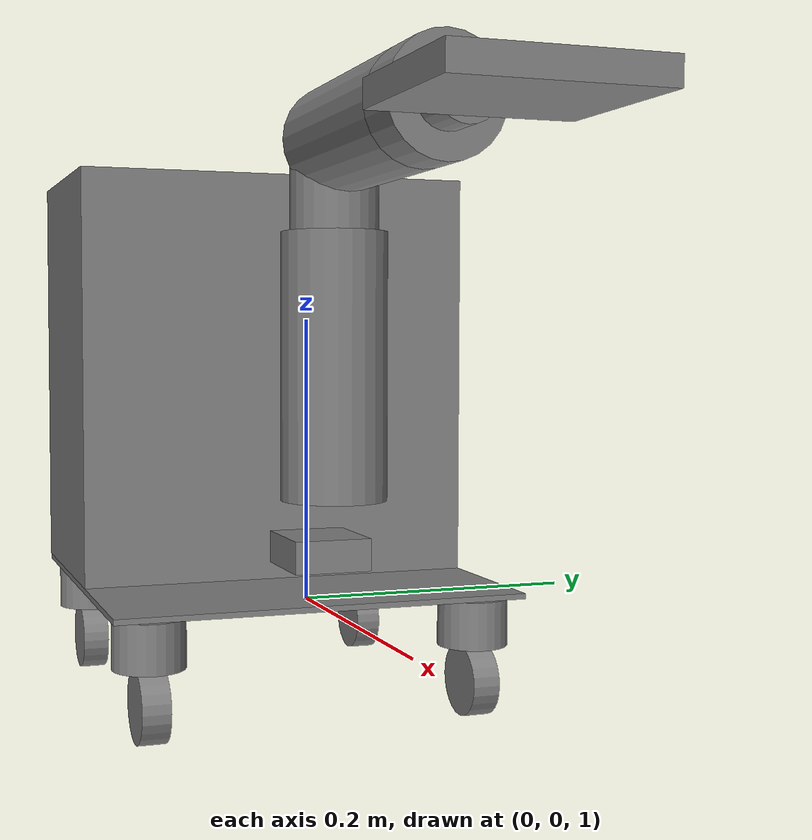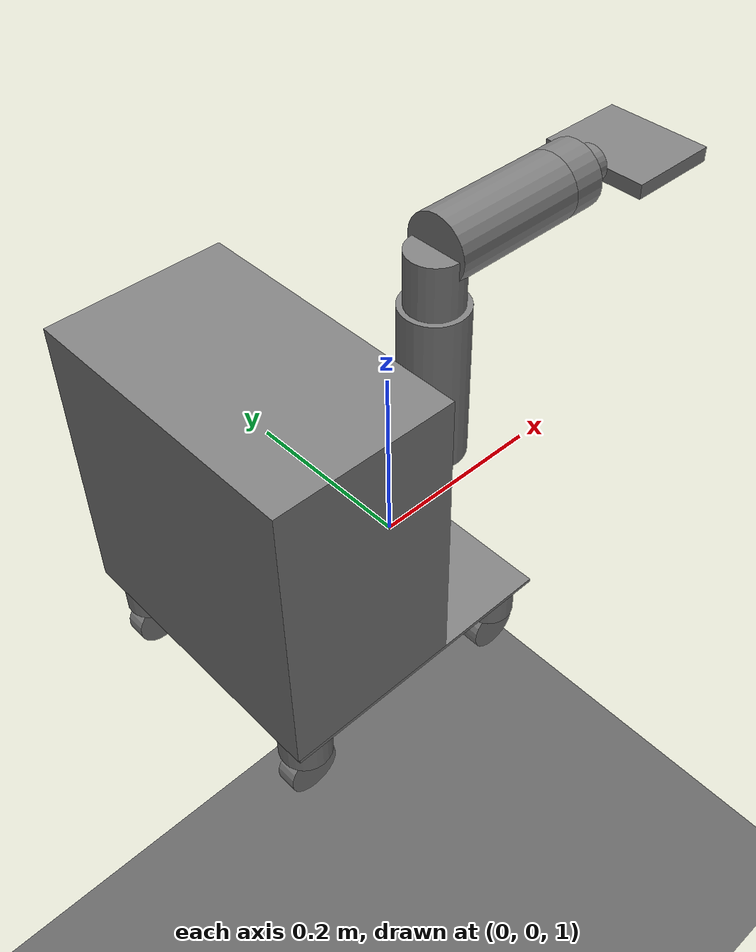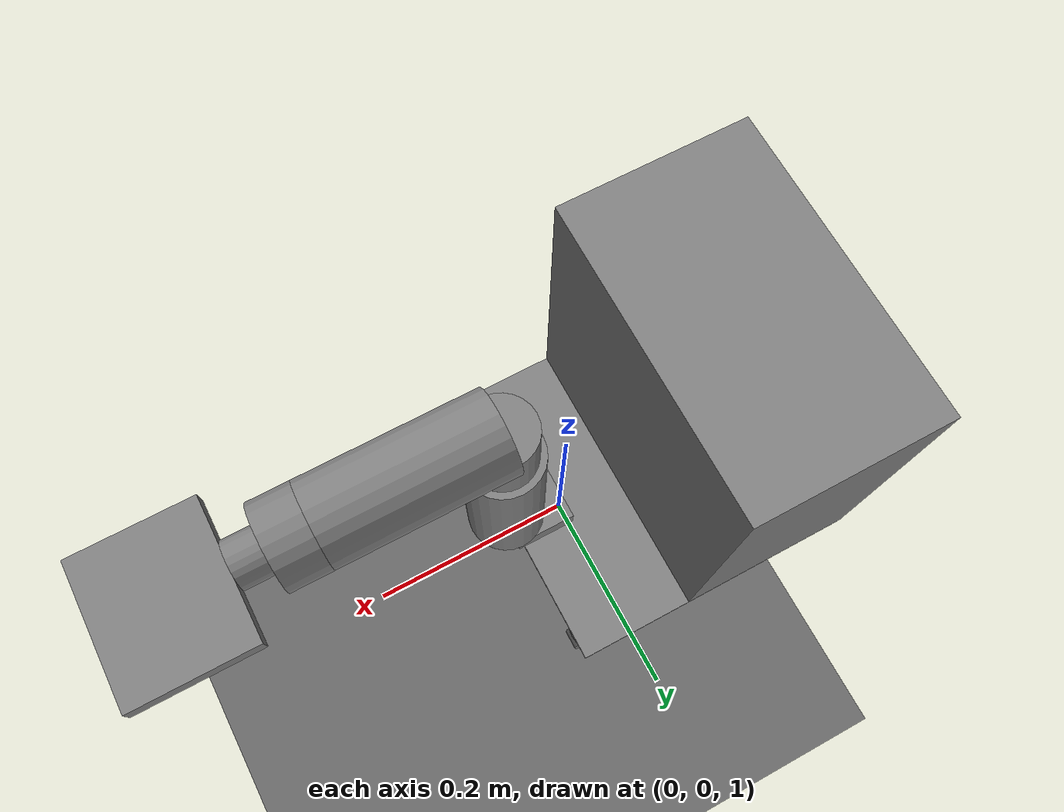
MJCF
<mujoco>
    <compiler autolimits="true" coordinate="local" angle="radian" meshdir="assets" />

    <option timestep="0.002" gravity="0 0 -9.81" integrator="Euler"
            density="1.225" viscosity="1.8e-5"/>

    <asset>
        <material name="grid" texrepeat="1 1" texuniform="true" rgba=".4 .4 .4 1" reflectance=".1"/>
    </asset>

    <default>
        <default class="base_link_default">
            <geom contype="1" conaffinity="1" condim="3" friction="0.8 0.5 0.5"/>
        </default>
        <default class="left_back_drive_default">
            <geom contype="1" conaffinity="1" condim="3" friction="0.8 0.5 0.5"/>
        </default>
        <default class="left_back_steer_default">
            <geom contype="1" conaffinity="1" condim="3" friction="0.8 0.5 0.5"/>
        </default>
        <default class="left_front_drive_default">
            <geom contype="1" conaffinity="1" condim="3" friction="0.8 0.5 0.5"/>
        </default>
        <default class="left_front_steer_default">
            <geom contype="1" conaffinity="1" condim="3" friction="0.8 0.5 0.5"/>
        </default>
        <default class="right_back_drive_default">
            <geom contype="1" conaffinity="1" condim="3" friction="0.8 0.5 0.5"/>
        </default>
        <default class="right_back_steer_default">
            <geom contype="1" conaffinity="1" condim="3" friction="0.8 0.5 0.5"/>
        </default>
        <default class="right_front_drive_default">
            <geom contype="1" conaffinity="1" condim="3" friction="0.8 0.5 0.5"/>
        </default>
        <default class="right_front_steer_default">
            <geom contype="1" conaffinity="1" condim="3" friction="0.8 0.5 0.5"/>
        </default>
    </default>

    <worldbody>
        <light directional="true" ambient=".2 .2 .2" dir="-0.5 0 -1" diffuse=".2 .2 .2" specular=".2 .2 .2" />
        <light directional="true" ambient=".2 .2 .2" dir="0 -0.5 -1" diffuse=".2 .2 .2" specular=".2 .2 .2" />
        <light directional="true" ambient=".2 .2 .2" dir="0 0.5 -1" diffuse=".2 .2 .2" specular=".2 .2 .2" />
        <light directional="true" ambient=".2 .2 .2" dir="0.5 0 -1" diffuse=".2 .2 .2" specular=".2 .2 .2" />
        <geom type="plane" size="0 0 0.01" material="grid" />

        <!-- base_link -->
        <body name="base" pos="0 0 1">
            <joint name="base_link_joint" type="free" damping="0.1" />

            <body name="base_link" pos="0 0 0">
                <inertial pos="-0.115726 0.000987 0.082924"
                          mass="7.918275"
                          diaginertia="0.188569 0.187639 0.110565"/>
                <geom type="box" name="base_link" size="0.1484 0.149 0.002" pos="-0.097 0 0.002" class="base_link_default"/>
                <body name="chassis" pos="-0.1569 0 0.1575">
                    <geom type="box" name="chassis" size="0.0905 0.149 0.1535" pos="0 0 0" class="base_link_default"/>
                </body>
            </body>

            <body name="camera_turret" pos="-0.04603 0.0 0.5">
                <inertial pos="0 0 0" mass="0.2" diaginertia="0.0002 0.0002 0.0002"/>
                <joint name="cam_yaw" axis="0 0 1" />
            </body>

            <!-- link1 -->
            <body name="link1" pos="0 0 0">
                <joint name="joint1" type="hinge" axis="0 0 -1" range="-3.14 3.14"/>
                <inertial pos="0.046035 0.000664 0.066104"
                          mass="0.254561"
                          diaginertia="0.000147 0.000290 0.000214"/>
                <geom type="box" name="link1" size="0.03 0.027 0.01125" pos="0.03 0 0.03925" contype="1" conaffinity="1" condim="3" friction="0.8 0.1 0.1"/>
                <!-- link2 -->
                <body name="link2" pos="0.06 0 0.078" euler="1.5708 0 0">
                    <joint name="joint2" type="hinge" axis="0 0 1" range="-3.14 3.14"/>
                    <inertial pos="0.000018 0.089981 -0.012953"
                              mass="1.044007"
                              diaginertia="0.005140 0.001031 0.004603"/>
                    <geom name="link2" type="cylinder" size="0.036 0.09" pos="0 0.09 0" euler="1.5708 0 0" contype="1" conaffinity="1" condim="3" friction="0.8 0.1 0.1"/>

                    <!-- link3 -->
                    <body name="link3" pos="0 0.18 0" euler="0 0 1.5708">
                        <joint name="joint3" type="hinge" axis="0 0 1" range="-3.14 3.14"/>
                        <inertial pos="0.030122 0.000884 -0.000517"
                                  mass="0.360137"
                                  diaginertia="0.000185 0.000453 0.000510"/>
                        <geom name="link3" type="cylinder" size="0.03 0.03" pos="0.03 0 0" euler="0 1.5708 0" contype="1" conaffinity="1" condim="3" friction="0.8 0.1 0.1"/>
                        <!-- link4 -->
                        <body name="link4" pos="0.06 0 0" euler="1.5708 0 0">
                            <joint name="joint4" type="hinge" axis="0 0 -1" range="-3.14 3.14"/>
                            <inertial pos="0.002071 -0.008724 0.094513"
                                      mass="0.455065"
                                      diaginertia="0.000849 0.000692 0.000351"/>
                            <geom name="link4" type="cylinder" size="0.036 0.0755" pos="0 0 0.0755" euler="0 0 0" contype="1" conaffinity="1" condim="3" friction="0.8 0.1 0.1"/>

                            <!-- link5 -->
                            <body name="link5" pos="0 0 0.151" euler="-1.5708 0 -3.1416">
                                <joint name="joint5" type="hinge" axis="0 0 1" range="-3.14 3.14"/>
                                <inertial pos="0 0.012084 0.001762"
                                          mass="0.191964"
                                          diaginertia="0.000119 0.000099 0.000113"/>
                                <geom name="link5" type="cylinder" size="0.036 0.0175" pos="0 0.0175 0" euler="1.5708 0 0" contype="1" conaffinity="1" condim="3" friction="0.8 0.1 0.1"/>

                                <!-- link6 -->
                                <body name="link6" pos="0 0 0" euler="-1.5708 0 3.1416">
                                    <joint name="joint6" type="hinge" axis="0 0 1" range="-3.14 3.14"/>
                                    <inertial pos="0.000162 -0.000111 0.047924"
                                              mass="0.00926"
                                              diaginertia="0.000002 0.000002 0.000003"/>
                                    <geom type="cylinder" name="link6" size="0.0198 0.0135" pos="0 0 0.0485" euler="0 0 0" contype="1" conaffinity="1" condim="3" friction="0.8 0.1 0.1"/>

                                    <!-- hand -->
                                    <body name="link_hand" pos="0 0 0.11564" euler="1.5708 1.5708 0">
                                        <inertial pos="-0.000035 -0.004805 -0.010369"
                                                  mass="0.172561"
                                                  diaginertia="0.000171 0.000105 0.000224"/>
                                        <geom type="box" name="link_hand" size="0.06 0.0513 0.008" pos="0 0 -0.008" contype="1" conaffinity="1" condim="3" friction="0.8 0.1 0.1"/>
                                    </body>

                                </body>
                            </body>
                        </body>
                    </body>
                </body>
            </body>
            <body name="left_back_steer" pos="-0.21730 0.12000 -0.00160" euler="0 0 -1.5708">
                <joint name="left_back_steer_joint" type="hinge" axis="0 0 1" />
                <inertial pos="0.006030 -0.000013 -0.042243"
                          mass="0.117107"
                          diaginertia="0.000071 0.000098 0.000049"/>
                <geom type="cylinder" name="left_back_steer" size="0.0255 0.01740" pos="0 0 -0.01740" class="left_back_steer_default"/>
                <body name="left_back_drive" pos="-0.02500 0 -0.06080">
                    <joint name="left_back_drive_joint" type="hinge" axis="1 0 0" />
                    <inertial pos="0.018840 0 0"
                              mass="0.142689"
                              diaginertia="0.000038 0.000033 0.000033"/>
                    <geom type="cylinder" name="left_back_drive" size="0.026 0.01" pos="0.025 0 0" euler="0 1.5708 0" class="left_back_drive_default"/>
                </body>
            </body>
            <body name="left_front_steer" pos="0.02330 0.12000 -0.00160" euler="0 0 -1.5708">
                <joint name="left_front_steer_joint" type="hinge" axis="0 0 1" />
                <inertial pos="0.006030 -0.000013 -0.042243"
                          mass="0.117107"
                          diaginertia="0.000071 0.000098 0.000049"/>
                <geom type="cylinder" name="left_front_steer" size="0.0255 0.01740" pos="0 0 -0.01740" class="left_front_steer_default"/>
                <body name="left_front_drive" pos="-0.02500 0 -0.06080">
                    <joint name="left_front_drive_joint" type="hinge" axis="1 0 0" />
                    <inertial pos="0.018840 0 0"
                              mass="0.142689"
                              diaginertia="0.000038 0.000033 0.000033"/>
                    <geom type="cylinder" name="left_front_drive" size="0.026 0.01" pos="0.025 0 0" euler="0 1.5708 0" class="left_front_drive_default"/>
                </body>
            </body>
            <body name="right_back_steer" pos="-0.21730 -0.12000 -0.00160" euler="0 0 -1.5708">
                <joint name="right_back_steer_joint" type="hinge" axis="0 0 1" />
                <inertial pos="-0.006030 0.000013 -0.042243"
                          mass="0.117107"
                          diaginertia="0.000071 0.000098 0.000049"/>
                <geom type="cylinder" name="right_back_steer" size="0.0255 0.01740" pos="0 0 -0.01740" class="right_back_steer_default"/>
                <body name="right_back_drive" pos="0.02500 0 -0.06080">
                    <joint name="right_back_drive_joint" type="hinge" axis="1 0 0" />
                    <inertial pos="-0.018840 0 0"
                              mass="0.142689"
                              diaginertia="0.000038 0.000033 0.000033"/>
                    <geom type="cylinder" name="right_back_drive" size="0.026 0.01" pos="-0.025 0 0" euler="0 1.5708 0" class="right_back_drive_default"/>
                </body>
            </body>
            <body name="right_front_steer" pos="0.02330 -0.12000 -0.00160" euler="0 0 -1.5708">
                <joint name="right_front_steer_joint" type="hinge" axis="0 0 1" />
                <inertial pos="-0.006030 0.000013 -0.042243"
                          mass="0.117107"
                          diaginertia="0.000071 0.000098 0.000049"/>
                <geom type="cylinder" name="right_front_steer" size="0.0255 0.01740" pos="0 0 -0.01740" class="right_front_steer_default"/>
                <body name="right_front_drive" pos="0.02500 0 -0.06080">
                    <joint name="right_front_drive_joint" type="hinge" axis="1 0 0" />
                    <inertial pos="-0.018840 0 0"
                              mass="0.142689"
                              diaginertia="0.000038 0.000033 0.000033"/>
                    <geom type="cylinder" name="right_front_drive" size="0.026 0.01" pos="-0.025 0 0" euler="0 1.5708 0" class="right_front_drive_default"/>
                </body>
            </body>
        </body>
    </worldbody>
    <actuator>
        <position joint="cam_yaw" kp="1" kv="0.1" ctrlrange="-3.14 3.14" ctrllimited="true"/>

        <position joint="joint1" kp="1" kv="1" ctrlrange="-3.14 3.14" ctrllimited="true"/>
        <position joint="joint2" kp="15" kv="0.05" ctrlrange="-3.14 3.14" ctrllimited="true"/>
        <position joint="joint3" kp="10" kv="1" ctrlrange="-3.14 3.14" ctrllimited="true"/>
        <position joint="joint4" kp="2" kv="0.1" ctrlrange="-3.14 3.14" ctrllimited="true"/>
        <position joint="joint5" kp="1" kv="0.1" ctrlrange="-3.14 3.14" ctrllimited="true"/>
        <position joint="joint6" kp="1" kv="0.01"  ctrlrange="-3.14 3.14" ctrllimited="true"/>

        <position joint="left_back_steer_joint" kp="1" kv="0.05" ctrlrange="-10 10" ctrllimited="true"/>
        <velocity joint="left_back_drive_joint" kv="0.005" ctrlrange="-10 10" ctrllimited="true"/>
        <position joint="left_front_steer_joint" kp="1" kv="0.05" ctrlrange="-10 10" ctrllimited="true"/>
        <velocity joint="left_front_drive_joint" kv="0.005" ctrlrange="-10 10" ctrllimited="true"/>
        <position joint="right_back_steer_joint" kp="1" kv="0.05" ctrlrange="-10 10" ctrllimited="true"/>
        <velocity joint="right_back_drive_joint" kv="0.005" ctrlrange="-10 10" ctrllimited="true"/>
        <position joint="right_front_steer_joint" kp="1" kv="0.05" ctrlrange="-10 10" ctrllimited="true"/>
        <velocity joint="right_front_drive_joint" kv="0.005" ctrlrange="-10 10" ctrllimited="true"/>
    </actuator>
</mujoco>
